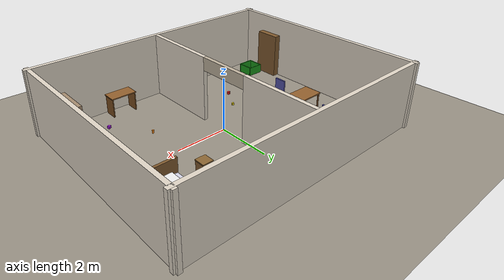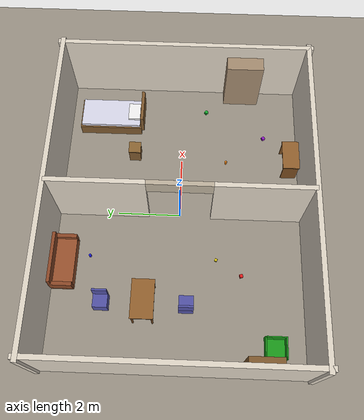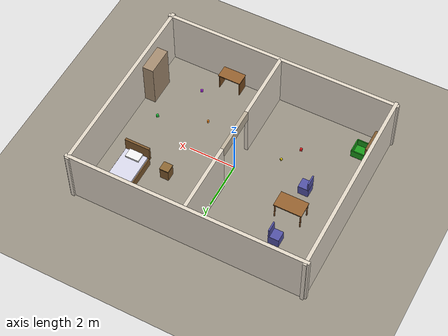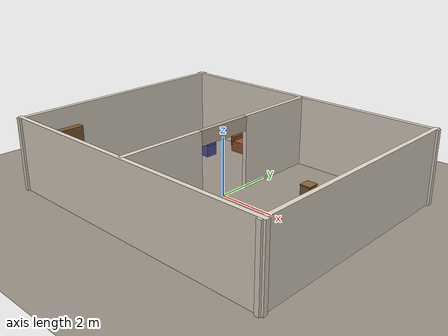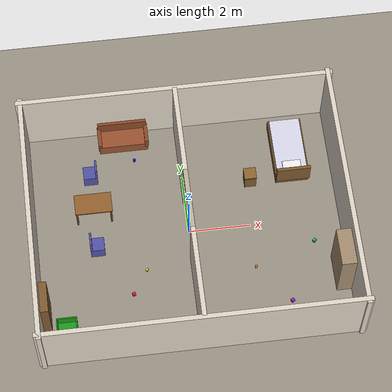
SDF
<?xml version="1.0" ?>
<sdf version="1.8">
    <world name="home">

    <!-- PHYSICS                                                       -->
    <gravity>0 0 -9.81</gravity>
    <physics name="default_physics" type="ode">
      <max_step_size>0.001</max_step_size>
      <real_time_factor>1.0</real_time_factor>
      <real_time_update_rate>1000</real_time_update_rate>
      <ode>
        <solver>
          <type>quick</type>
          <iters>50</iters>
          <sor>1.3</sor>
        </solver>
        <constraints>
          <cfm>0.0</cfm>
          <erp>0.2</erp>
          <contact_max_correcting_vel>100</contact_max_correcting_vel>
          <contact_surface_layer>0.001</contact_surface_layer>
        </constraints>
      </ode>
    </physics>

    <!-- SCENE / LIGHTING                                              -->
    <scene>
      <ambient>0.45 0.45 0.45 1</ambient>
      <background>0.7 0.7 0.75 1</background>
      <shadows>true</shadows>
      <grid>false</grid>
    </scene>

    <!-- Primary sun (directional) -->
    <light type="directional" name="sun">
      <cast_shadows>true</cast_shadows>
      <pose>0 0 10 0 0 0</pose>
      <diffuse>0.85 0.82 0.75 1</diffuse>
      <specular>0.25 0.25 0.22 1</specular>
      <direction>-0.4 0.1 -0.9</direction>
      <attenuation>
        <range>1000</range>
        <constant>0.9</constant>
        <linear>0.01</linear>
        <quadratic>0.001</quadratic>
      </attenuation>
    </light>

    <!-- Fill light from the opposite side — reduces harsh shadows -->
    <light type="directional" name="fill_light">
      <cast_shadows>false</cast_shadows>
      <pose>0 0 8 0 0 0</pose>
      <diffuse>0.3 0.3 0.35 1</diffuse>
      <specular>0.05 0.05 0.05 1</specular>
      <direction>0.5 -0.2 -0.8</direction>
    </light>
    <!-- GROUND PLANE                                                  -->
    <!-- Non-zero friction — mu=0.8 prevents wheel slip artefacts     -->
    <model name="ground_plane">
      <static>true</static>
      <link name="link">
        <collision name="collision">
          <geometry>
            <plane>
              <normal>0 0 1</normal>
              <size>100 100</size>
            </plane>
          </geometry>
          <surface>
            <friction>
              <ode>
                <mu>0.8</mu>
                <mu2>0.8</mu2>
                <fdir1>0 0 0</fdir1>
                <slip1>0.0</slip1>
                <slip2>0.0</slip2>
              </ode>
            </friction>
            <contact>
              <ode>
                <kp>1000000</kp>
                <kd>100</kd>
              </ode>
            </contact>
          </surface>
        </collision>
        <visual name="visual">
          <geometry>
            <plane>
              <normal>0 0 1</normal>
              <size>100 100</size>
            </plane>
          </geometry>
          <material>
            <ambient>0.55 0.52 0.48 1</ambient>
            <diffuse>0.60 0.57 0.52 1</diffuse>
            <specular>0.05 0.05 0.05 1</specular>
          </material>
        </visual>
      </link>
    </model>

    <!-- WALLS                                                         -->
    <!-- OUTER SOUTH (y = -4, full width 10 m) -->
    <model name="outer_wall_south">
      <static>true</static>
      <pose>0 -4 1.25 0 0 0</pose>
      <link name="link">
        <collision name="col">
          <geometry><box><size>10.3 0.15 2.5</size></box></geometry>
        </collision>
        <visual name="vis">
          <geometry><box><size>10.3 0.15 2.5</size></box></geometry>
          <material><ambient>0.88 0.84 0.78 1</ambient><diffuse>0.88 0.84 0.78 1</diffuse></material>
        </visual>
      </link>
    </model>

    <!-- OUTER NORTH (y = +4, full width 10 m) -->
    <model name="outer_wall_north">
      <static>true</static>
      <pose>0 4 1.25 0 0 0</pose>
      <link name="link">
        <collision name="col">
          <geometry><box><size>10.3 0.15 2.5</size></box></geometry>
        </collision>
        <visual name="vis">
          <geometry><box><size>10.3 0.15 2.5</size></box></geometry>
          <material><ambient>0.88 0.84 0.78 1</ambient><diffuse>0.88 0.84 0.78 1</diffuse></material>
        </visual>
      </link>
    </model>

    <!-- OUTER WEST (x = -5, room 1) -->
    <model name="outer_wall_west">
      <static>true</static>
      <pose>-5 0 1.25 0 0 0</pose>
      <link name="link">
        <collision name="col">
          <geometry><box><size>0.15 8.3 2.5</size></box></geometry>
        </collision>
        <visual name="vis">
          <geometry><box><size>0.15 8.3 2.5</size></box></geometry>
          <material><ambient>0.88 0.84 0.78 1</ambient><diffuse>0.88 0.84 0.78 1</diffuse></material>
        </visual>
      </link>
    </model>

    <!-- OUTER EAST (x = +5, room 2) -->
    <model name="outer_wall_east">
      <static>true</static>
      <pose>5 0 1.25 0 0 0</pose>
      <link name="link">
        <collision name="col">
          <geometry><box><size>0.15 8.3 2.5</size></box></geometry>
        </collision>
        <visual name="vis">
          <geometry><box><size>0.15 8.3 2.5</size></box></geometry>
          <material><ambient>0.88 0.84 0.78 1</ambient><diffuse>0.88 0.84 0.78 1</diffuse></material>
        </visual>
      </link>
    </model>

    <model name="div_wall_south">
      <static>true</static>
      <pose>0 -2.5 1.25 0 0 0</pose>
      <link name="link">
        <collision name="col">
          <geometry><box><size>0.15 3.0 2.5</size></box></geometry>
        </collision>
        <visual name="vis">
          <geometry><box><size>0.15 3.0 2.5</size></box></geometry>
          <material><ambient>0.88 0.84 0.78 1</ambient><diffuse>0.88 0.84 0.78 1</diffuse></material>
        </visual>
      </link>
    </model>

    <model name="div_wall_north">
      <static>true</static>
      <pose>0 2.5 1.25 0 0 0</pose>
      <link name="link">
        <collision name="col">
          <geometry><box><size>0.15 3.0 2.5</size></box></geometry>
        </collision>
        <visual name="vis">
          <geometry><box><size>0.15 3.0 2.5</size></box></geometry>
          <material><ambient>0.88 0.84 0.78 1</ambient><diffuse>0.88 0.84 0.78 1</diffuse></material>
        </visual>
      </link>
    </model>

    <!-- Door frame header (visual only — spans doorway top) -->
    <model name="door_frame_header">
      <static>true</static>
      <pose>0 0 2.25 0 0 0</pose>
      <link name="link">
        <collision name="col">
          <geometry><box><size>0.15 2.0 0.5</size></box></geometry>
        </collision>
        <visual name="vis">
          <geometry><box><size>0.15 2.0 0.5</size></box></geometry>
          <material><ambient>0.75 0.70 0.62 1</ambient><diffuse>0.75 0.70 0.62 1</diffuse></material>
        </visual>
      </link>
    </model>

    <!-- FURNITURE — ROOM 1 (living room, x<0)                        -->

    <!--
      TABLE — x=-3, y=1
      Top: 1.2 x 0.7 x 0.05 at z=0.75
      4 legs: radius 0.03, length 0.75, sitting on floor
    -->
    <model name="table">
      <static>true</static>
      <pose>-3 1 0 0 0 0</pose>
      <link name="link">
        <!-- Top -->
        <visual name="top_vis">
          <pose>0 0 0.775 0 0 0</pose>
          <geometry><box><size>1.2 0.7 0.05</size></box></geometry>
          <material><ambient>0.52 0.33 0.13 1</ambient><diffuse>0.58 0.38 0.18 1</diffuse></material>
        </visual>
        <collision name="top_col">
          <pose>0 0 0.775 0 0 0</pose>
          <geometry><box><size>1.2 0.7 0.05</size></box></geometry>
        </collision>
        <!-- Leg FL -->
        <visual name="leg_fl_vis"><pose>0.55 0.3 0.375 0 0 0</pose>
          <geometry><cylinder><radius>0.03</radius><length>0.75</length></cylinder></geometry>
          <material><ambient>0.40 0.24 0.10 1</ambient><diffuse>0.40 0.24 0.10 1</diffuse></material>
        </visual>
        <collision name="leg_fl_col"><pose>0.55 0.3 0.375 0 0 0</pose>
          <geometry><cylinder><radius>0.03</radius><length>0.75</length></cylinder></geometry>
        </collision>
        <!-- Leg FR -->
        <visual name="leg_fr_vis"><pose>0.55 -0.3 0.375 0 0 0</pose>
          <geometry><cylinder><radius>0.03</radius><length>0.75</length></cylinder></geometry>
          <material><ambient>0.40 0.24 0.10 1</ambient><diffuse>0.40 0.24 0.10 1</diffuse></material>
        </visual>
        <collision name="leg_fr_col"><pose>0.55 -0.3 0.375 0 0 0</pose>
          <geometry><cylinder><radius>0.03</radius><length>0.75</length></cylinder></geometry>
        </collision>
        <!-- Leg BL -->
        <visual name="leg_bl_vis"><pose>-0.55 0.3 0.375 0 0 0</pose>
          <geometry><cylinder><radius>0.03</radius><length>0.75</length></cylinder></geometry>
          <material><ambient>0.40 0.24 0.10 1</ambient><diffuse>0.40 0.24 0.10 1</diffuse></material>
        </visual>
        <collision name="leg_bl_col"><pose>-0.55 0.3 0.375 0 0 0</pose>
          <geometry><cylinder><radius>0.03</radius><length>0.75</length></cylinder></geometry>
        </collision>
        <!-- Leg BR -->
        <visual name="leg_br_vis"><pose>-0.55 -0.3 0.375 0 0 0</pose>
          <geometry><cylinder><radius>0.03</radius><length>0.75</length></cylinder></geometry>
          <material><ambient>0.40 0.24 0.10 1</ambient><diffuse>0.40 0.24 0.10 1</diffuse></material>
        </visual>
        <collision name="leg_br_col"><pose>-0.55 -0.3 0.375 0 0 0</pose>
          <geometry><cylinder><radius>0.03</radius><length>0.75</length></cylinder></geometry>
        </collision>
      </link>
    </model>

    <!--
      CHAIR 1 — north side of table, facing south
      Seat bottom at z=0 so legs sit on floor, seat top at z=0.45
    -->
    <model name="chair1">
      <static>true</static>
      <pose>-3 2.3 0 0 0 3.14159</pose>
      <link name="link">
        <!-- Seat -->
        <visual name="seat_vis"><pose>0 0 0.225 0 0 0</pose>
          <geometry><box><size>0.45 0.45 0.45</size></box></geometry>
          <material><ambient>0.28 0.28 0.58 1</ambient><diffuse>0.32 0.32 0.65 1</diffuse></material>
        </visual>
        <collision name="seat_col"><pose>0 0 0.225 0 0 0</pose>
          <geometry><box><size>0.45 0.45 0.45</size></box></geometry>
        </collision>
        <!-- Backrest -->
        <visual name="back_vis"><pose>-0.2 0 0.65 0 0 0</pose>
          <geometry><box><size>0.06 0.45 0.45</size></box></geometry>
          <material><ambient>0.28 0.28 0.58 1</ambient><diffuse>0.32 0.32 0.65 1</diffuse></material>
        </visual>
        <collision name="back_col"><pose>-0.2 0 0.65 0 0 0</pose>
          <geometry><box><size>0.06 0.45 0.45</size></box></geometry>
        </collision>
      </link>
    </model>

    <!--
      CHAIR 2 — south side of table, facing north
    -->
    <model name="chair2">
      <static>true</static>
      <pose>-3 -0.3 0 0 0 0</pose>
      <link name="link">
        <visual name="seat_vis"><pose>0 0 0.225 0 0 0</pose>
          <geometry><box><size>0.45 0.45 0.45</size></box></geometry>
          <material><ambient>0.28 0.28 0.58 1</ambient><diffuse>0.32 0.32 0.65 1</diffuse></material>
        </visual>
        <collision name="seat_col"><pose>0 0 0.225 0 0 0</pose>
          <geometry><box><size>0.45 0.45 0.45</size></box></geometry>
        </collision>
        <visual name="back_vis"><pose>-0.2 0 0.65 0 0 0</pose>
          <geometry><box><size>0.06 0.45 0.45</size></box></geometry>
          <material><ambient>0.28 0.28 0.58 1</ambient><diffuse>0.32 0.32 0.65 1</diffuse></material>
        </visual>
        <collision name="back_col"><pose>-0.2 0 0.65 0 0 0</pose>
          <geometry><box><size>0.06 0.45 0.45</size></box></geometry>
        </collision>
      </link>
    </model>

    <!--
      BOOKSHELF — against west wall of room 1
      Frame + 3 shelves — ALL shelves have collision geometry
    -->
    <model name="bookshelf">
      <static>true</static>
      <pose>-4.82 -2.5 0 0 0 0</pose>
      <link name="link">
        <!-- Outer frame (back + sides) -->
        <visual name="frame_vis"><pose>0 0 0.9 0 0 0</pose>
          <geometry><box><size>0.3 1.0 1.8</size></box></geometry>
          <material><ambient>0.44 0.30 0.14 1</ambient><diffuse>0.50 0.35 0.18 1</diffuse></material>
        </visual>
        <collision name="frame_col"><pose>0 0 0.9 0 0 0</pose>
          <geometry><box><size>0.3 1.0 1.8</size></box></geometry>
        </collision>
        <!-- Shelf panel 1 — z=0.45 -->
        <visual name="shelf1_vis"><pose>0 0 0.45 0 0 0</pose>
          <geometry><box><size>0.27 0.96 0.03</size></box></geometry>
          <material><ambient>0.56 0.40 0.20 1</ambient><diffuse>0.56 0.40 0.20 1</diffuse></material>
        </visual>
        <collision name="shelf1_col"><pose>0 0 0.45 0 0 0</pose>
          <geometry><box><size>0.27 0.96 0.03</size></box></geometry>
        </collision>
        <!-- Shelf panel 2 — z=0.90 -->
        <visual name="shelf2_vis"><pose>0 0 0.90 0 0 0</pose>
          <geometry><box><size>0.27 0.96 0.03</size></box></geometry>
          <material><ambient>0.56 0.40 0.20 1</ambient><diffuse>0.56 0.40 0.20 1</diffuse></material>
        </visual>
        <collision name="shelf2_col"><pose>0 0 0.90 0 0 0</pose>
          <geometry><box><size>0.27 0.96 0.03</size></box></geometry>
        </collision>
        <!-- Shelf panel 3 — z=1.35 -->
        <visual name="shelf3_vis"><pose>0 0 1.35 0 0 0</pose>
          <geometry><box><size>0.27 0.96 0.03</size></box></geometry>
          <material><ambient>0.56 0.40 0.20 1</ambient><diffuse>0.56 0.40 0.20 1</diffuse></material>
        </visual>
        <collision name="shelf3_col"><pose>0 0 1.35 0 0 0</pose>
          <geometry><box><size>0.27 0.96 0.03</size></box></geometry>
        </collision>
      </link>
    </model>

    <!--
      SOFA — room 1, against north wall, constrains robot path
    -->
    <model name="sofa">
      <static>true</static>
      <pose>-1.8 3.55 0 0 0 0</pose>
      <link name="link">
        <!-- Base cushion -->
        <visual name="base_vis"><pose>0 0 0.2 0 0 0</pose>
          <geometry><box><size>1.6 0.7 0.4</size></box></geometry>
          <material><ambient>0.55 0.28 0.15 1</ambient><diffuse>0.60 0.32 0.18 1</diffuse></material>
        </visual>
        <collision name="base_col"><pose>0 0 0.2 0 0 0</pose>
          <geometry><box><size>1.6 0.7 0.4</size></box></geometry>
        </collision>
        <!-- Backrest -->
        <visual name="back_vis"><pose>0 0.32 0.55 0 0 0</pose>
          <geometry><box><size>1.6 0.1 0.5</size></box></geometry>
          <material><ambient>0.50 0.24 0.12 1</ambient><diffuse>0.55 0.28 0.15 1</diffuse></material>
        </visual>
        <collision name="back_col"><pose>0 0.32 0.55 0 0 0</pose>
          <geometry><box><size>1.6 0.1 0.5</size></box></geometry>
        </collision>
        <!-- Left arm -->
        <visual name="arm_l_vis"><pose>-0.77 0 0.38 0 0 0</pose>
          <geometry><box><size>0.12 0.7 0.36</size></box></geometry>
          <material><ambient>0.50 0.24 0.12 1</ambient><diffuse>0.55 0.28 0.15 1</diffuse></material>
        </visual>
        <collision name="arm_l_col"><pose>-0.77 0 0.38 0 0 0</pose>
          <geometry><box><size>0.12 0.7 0.36</size></box></geometry>
        </collision>
        <!-- Right arm -->
        <visual name="arm_r_vis"><pose>0.77 0 0.38 0 0 0</pose>
          <geometry><box><size>0.12 0.7 0.36</size></box></geometry>
          <material><ambient>0.50 0.24 0.12 1</ambient><diffuse>0.55 0.28 0.15 1</diffuse></material>
        </visual>
        <collision name="arm_r_col"><pose>0.77 0 0.38 0 0 0</pose>
          <geometry><box><size>0.12 0.7 0.36</size></box></geometry>
        </collision>
      </link>
    </model>

    <!-- FURNITURE — ROOM 2 (bedroom, x>0)                           -->

    <!--
      BED — northeast corner of room 2
    -->
    <model name="bed">
      <static>true</static>
      <pose>3.6 2.5 0 0 0 0</pose>
      <link name="link">
        <!-- Bed frame -->
        <visual name="frame_vis"><pose>0 0 0.2 0 0 0</pose>
          <geometry><box><size>1.1 2.1 0.4</size></box></geometry>
          <material><ambient>0.44 0.30 0.14 1</ambient><diffuse>0.50 0.35 0.18 1</diffuse></material>
        </visual>
        <collision name="frame_col"><pose>0 0 0.2 0 0 0</pose>
          <geometry><box><size>1.1 2.1 0.4</size></box></geometry>
        </collision>
        <!-- Mattress -->
        <visual name="mattress_vis"><pose>0 0 0.45 0 0 0</pose>
          <geometry><box><size>1.0 2.0 0.12</size></box></geometry>
          <material><ambient>0.85 0.85 0.92 1</ambient><diffuse>0.85 0.85 0.92 1</diffuse></material>
        </visual>
        <collision name="mattress_col"><pose>0 0 0.45 0 0 0</pose>
          <geometry><box><size>1.0 2.0 0.12</size></box></geometry>
        </collision>
        <!-- Headboard -->
        <visual name="head_vis"><pose>0 -1.1 0.65 0 0 0</pose>
          <geometry><box><size>1.1 0.1 0.7</size></box></geometry>
          <material><ambient>0.44 0.30 0.14 1</ambient><diffuse>0.50 0.35 0.18 1</diffuse></material>
        </visual>
        <collision name="head_col"><pose>0 -1.1 0.65 0 0 0</pose>
          <geometry><box><size>1.1 0.1 0.7</size></box></geometry>
        </collision>
        <!-- Pillow -->
        <visual name="pillow_vis"><pose>0 -0.8 0.58 0 0 0</pose>
          <geometry><box><size>0.6 0.4 0.08</size></box></geometry>
          <material><ambient>0.95 0.95 0.95 1</ambient><diffuse>0.95 0.95 0.95 1</diffuse></material>
        </visual>
      </link>
    </model>

    <!--
      BEDSIDE TABLE — beside bed, constrains path
    -->
    <model name="bedside_table">
      <static>true</static>
      <pose>2.2 1.6 0 0 0 0</pose>
      <link name="link">
        <visual name="body_vis"><pose>0 0 0.28 0 0 0</pose>
          <geometry><box><size>0.38 0.38 0.56</size></box></geometry>
          <material><ambient>0.50 0.35 0.18 1</ambient><diffuse>0.50 0.35 0.18 1</diffuse></material>
        </visual>
        <collision name="body_col"><pose>0 0 0.28 0 0 0</pose>
          <geometry><box><size>0.38 0.38 0.56</size></box></geometry>
        </collision>
        <visual name="top_vis"><pose>0 0 0.57 0 0 0</pose>
          <geometry><box><size>0.40 0.40 0.04</size></box></geometry>
          <material><ambient>0.55 0.40 0.20 1</ambient><diffuse>0.55 0.40 0.20 1</diffuse></material>
        </visual>
        <collision name="top_col"><pose>0 0 0.57 0 0 0</pose>
          <geometry><box><size>0.40 0.40 0.04</size></box></geometry>
        </collision>
      </link>
    </model>

    <!--
      WARDROBE — against east wall of room 2
      Solid body + collision on door panel too
    -->
    <model name="wardrobe">
      <static>true</static>
      <pose>4.72 -2.0 0 0 0 0</pose>
      <link name="link">
        <!-- Main body -->
        <visual name="body_vis"><pose>0 0 1.0 0 0 0</pose>
          <geometry><box><size>0.55 1.2 2.0</size></box></geometry>
          <material><ambient>0.60 0.50 0.40 1</ambient><diffuse>0.65 0.55 0.44 1</diffuse></material>
        </visual>
        <collision name="body_col"><pose>0 0 1.0 0 0 0</pose>
          <geometry><box><size>0.55 1.2 2.0</size></box></geometry>
        </collision>
        <!-- Door panel (visual + collision) -->
        <visual name="door_vis"><pose>0.285 0 1.0 0 0 0</pose>
          <geometry><box><size>0.03 1.15 1.95</size></box></geometry>
          <material><ambient>0.72 0.62 0.50 1</ambient><diffuse>0.72 0.62 0.50 1</diffuse></material>
        </visual>
        <collision name="door_col"><pose>0.285 0 1.0 0 0 0</pose>
          <geometry><box><size>0.03 1.15 1.95</size></box></geometry>
        </collision>
        <!-- Door handle -->
        <visual name="handle_vis"><pose>0.32 -0.4 1.0 0 0 0</pose>
          <geometry><sphere><radius>0.025</radius></sphere></geometry>
          <material><ambient>0.7 0.7 0.7 1</ambient><diffuse>0.8 0.8 0.8 1</diffuse></material>
        </visual>
      </link>
    </model>

    <!--
      SMALL DESK — room 2, against south wall — adds nav constraint
    -->
    <model name="desk">
      <static>true</static>
      <pose>2.0 -3.6 0 0 0 0</pose>
      <link name="link">
        <!-- Top -->
        <visual name="top_vis"><pose>0 0 0.75 0 0 0</pose>
          <geometry><box><size>1.0 0.55 0.04</size></box></geometry>
          <material><ambient>0.52 0.33 0.13 1</ambient><diffuse>0.58 0.38 0.18 1</diffuse></material>
        </visual>
        <collision name="top_col"><pose>0 0 0.75 0 0 0</pose>
          <geometry><box><size>1.0 0.55 0.04</size></box></geometry>
        </collision>
        <!-- Left panel leg -->
        <visual name="leg_l_vis"><pose>-0.46 0 0.375 0 0 0</pose>
          <geometry><box><size>0.04 0.50 0.75</size></box></geometry>
          <material><ambient>0.48 0.30 0.12 1</ambient><diffuse>0.48 0.30 0.12 1</diffuse></material>
        </visual>
        <collision name="leg_l_col"><pose>-0.46 0 0.375 0 0 0</pose>
          <geometry><box><size>0.04 0.50 0.75</size></box></geometry>
        </collision>
        <!-- Right panel leg -->
        <visual name="leg_r_vis"><pose>0.46 0 0.375 0 0 0</pose>
          <geometry><box><size>0.04 0.50 0.75</size></box></geometry>
          <material><ambient>0.48 0.30 0.12 1</ambient><diffuse>0.48 0.30 0.12 1</diffuse></material>
        </visual>
        <collision name="leg_r_col"><pose>0.46 0 0.375 0 0 0</pose>
          <geometry><box><size>0.04 0.50 0.75</size></box></geometry>
        </collision>
      </link>
    </model>

    <!-- COLLECTION BOX                                               -->
    <!-- Near robot start in room 1 SW corner — open top, 4 walls    -->
    <!-- Bottom at z=0, walls are 0.35 m tall                         -->
    <!-- Robot spawn at approx x=-4.0, y=0.0 — box at x=-4.2, y=-3  -->
    <model name="collection_box">
      <static>true</static>
      <pose>-4.2 -3.0 0 0 0 0</pose>
      <link name="link">
        <!-- Bottom -->
        <visual name="bot_vis"><pose>0 0 0.02 0 0 0</pose>
          <geometry><box><size>0.65 0.65 0.04</size></box></geometry>
          <material><ambient>0.08 0.52 0.08 1</ambient><diffuse>0.10 0.60 0.10 1</diffuse></material>
        </visual>
        <collision name="bot_col"><pose>0 0 0.02 0 0 0</pose>
          <geometry><box><size>0.65 0.65 0.04</size></box></geometry>
        </collision>
        <!-- Wall North -->
        <visual name="wn_vis"><pose>0 0.31 0.19 0 0 0</pose>
          <geometry><box><size>0.65 0.04 0.35</size></box></geometry>
          <material><ambient>0.08 0.52 0.08 1</ambient><diffuse>0.10 0.60 0.10 1</diffuse></material>
        </visual>
        <collision name="wn_col"><pose>0 0.31 0.19 0 0 0</pose>
          <geometry><box><size>0.65 0.04 0.35</size></box></geometry>
        </collision>
        <!-- Wall South -->
        <visual name="ws_vis"><pose>0 -0.31 0.19 0 0 0</pose>
          <geometry><box><size>0.65 0.04 0.35</size></box></geometry>
          <material><ambient>0.08 0.52 0.08 1</ambient><diffuse>0.10 0.60 0.10 1</diffuse></material>
        </visual>
        <collision name="ws_col"><pose>0 -0.31 0.19 0 0 0</pose>
          <geometry><box><size>0.65 0.04 0.35</size></box></geometry>
        </collision>
        <!-- Wall East -->
        <visual name="we_vis"><pose>0.31 0 0.19 0 0 0</pose>
          <geometry><box><size>0.04 0.57 0.35</size></box></geometry>
          <material><ambient>0.08 0.52 0.08 1</ambient><diffuse>0.10 0.60 0.10 1</diffuse></material>
        </visual>
        <collision name="we_col"><pose>0.31 0 0.19 0 0 0</pose>
          <geometry><box><size>0.04 0.57 0.35</size></box></geometry>
        </collision>
        <!-- Wall West -->
        <visual name="ww_vis"><pose>-0.31 0 0.19 0 0 0</pose>
          <geometry><box><size>0.04 0.57 0.35</size></box></geometry>
          <material><ambient>0.08 0.52 0.08 1</ambient><diffuse>0.10 0.60 0.10 1</diffuse></material>
        </visual>
        <collision name="ww_col"><pose>-0.31 0 0.19 0 0 0</pose>
          <geometry><box><size>0.04 0.57 0.35</size></box></geometry>
        </collision>
      </link>
    </model>

    <!-- PICKUP OBJECTS                                               -->
    <!-- All: static=false, physically complete (mass + inertia +    -->
    <!-- collision + friction + visual), on the floor (z=half height)-->
    <!-- None placed inside the doorway (y=[-1,1] at x=0)           -->
    <!-- Inertia for solid box: I = 1/12 * m * (a^2 + b^2)          -->
    <!-- Inertia for solid cylinder: Ixx=Iyy=1/12*m*(3r^2+h^2),     -->
    <!--                             Izz=1/2*m*r^2                   -->

    <!-- Object 1: red block, room 1 near centre -->
    <model name="pickup_block_red">
      <static>false</static>
      <pose>-2.0 -2.0 0.05 0 0 0.3</pose>
      <link name="link">
        <inertial>
          <mass>0.10</mass>
          <!-- 1/12*0.1*(0.1^2+0.1^2) = 0.000167 each, Izz same -->
          <inertia><ixx>0.000167</ixx><iyy>0.000167</iyy><izz>0.000167</izz>
                   <ixy>0</ixy><ixz>0</ixz><iyz>0</iyz></inertia>
        </inertial>
        <collision name="col">
          <geometry><box><size>0.10 0.10 0.10</size></box></geometry>
          <surface><friction><ode><mu>0.6</mu><mu2>0.6</mu2></ode></friction>
            <contact><ode><kp>100000</kp><kd>10</kd></ode></contact>
          </surface>
        </collision>
        <visual name="vis">
          <geometry><box><size>0.10 0.10 0.10</size></box></geometry>
          <material><ambient>0.80 0.10 0.10 1</ambient><diffuse>0.90 0.10 0.10 1</diffuse></material>
        </visual>
      </link>
      <plugin filename="gz-sim-detachable-joint-system"
              name="gz::sim::systems::DetachableJoint">
        <parent_link>link</parent_link>
        <child_model>tidying_robot</child_model>
        <child_link>right_gripper_palm</child_link>
        <topic>/pickup_block_red/attach</topic>
        <detach_topic>/pickup_block_red/detach</detach_topic>
        <suppress_child_warning>true</suppress_child_warning>
      </plugin>
    </model>

    <!-- Object 2: blue cylinder, room 1 near sofa -->
    <model name="pickup_cylinder_blue">
      <static>false</static>
      <pose>-1.5 2.8 0.06 0 0 0</pose>
      <link name="link">
        <inertial>
          <mass>0.15</mass>
          <!-- r=0.04 h=0.12: Ixx=Iyy=1/12*0.15*(3*0.0016+0.0144)=0.000225 Izz=0.5*0.15*0.0016=0.00012 -->
          <inertia><ixx>0.000240</ixx><iyy>0.000240</iyy><izz>0.000120</izz>
                   <ixy>0</ixy><ixz>0</ixz><iyz>0</iyz></inertia>
        </inertial>
        <collision name="col">
          <geometry><cylinder><radius>0.04</radius><length>0.12</length></cylinder></geometry>
          <surface><friction><ode><mu>0.6</mu><mu2>0.6</mu2></ode></friction>
            <contact><ode><kp>100000</kp><kd>10</kd></ode></contact>
          </surface>
        </collision>
        <visual name="vis">
          <geometry><cylinder><radius>0.04</radius><length>0.12</length></cylinder></geometry>
          <material><ambient>0.10 0.10 0.85 1</ambient><diffuse>0.10 0.10 0.90 1</diffuse></material>
        </visual>
      </link>
      <plugin filename="gz-sim-detachable-joint-system"
              name="gz::sim::systems::DetachableJoint">
        <parent_link>link</parent_link>
        <child_model>tidying_robot</child_model>
        <child_link>right_gripper_palm</child_link>
        <topic>/pickup_cylinder_blue/attach</topic>
        <detach_topic>/pickup_cylinder_blue/detach</detach_topic>
        <suppress_child_warning>true</suppress_child_warning>
      </plugin>
    </model>

    <!-- Object 3: yellow block, room 1 — away from doorway -->
    <model name="pickup_block_yellow">
      <static>false</static>
      <pose>-1.5 -1.2 0.04 0 0 1.1</pose>
      <link name="link">
        <inertial>
          <mass>0.08</mass>
          <!-- 0.08x0.08x0.08 box: 1/12*0.08*(0.0064+0.0064)=0.0000853 -->
          <inertia><ixx>0.0000853</ixx><iyy>0.0000853</iyy><izz>0.0000853</izz>
                   <ixy>0</ixy><ixz>0</ixz><iyz>0</iyz></inertia>
        </inertial>
        <collision name="col">
          <geometry><box><size>0.08 0.08 0.08</size></box></geometry>
          <surface><friction><ode><mu>0.6</mu><mu2>0.6</mu2></ode></friction>
            <contact><ode><kp>100000</kp><kd>10</kd></ode></contact>
          </surface>
        </collision>
        <visual name="vis">
          <geometry><box><size>0.08 0.08 0.08</size></box></geometry>
          <material><ambient>0.92 0.82 0.08 1</ambient><diffuse>0.92 0.82 0.08 1</diffuse></material>
        </visual>
      </link>
      <plugin filename="gz-sim-detachable-joint-system"
              name="gz::sim::systems::DetachableJoint">
        <parent_link>link</parent_link>
        <child_model>tidying_robot</child_model>
        <child_link>right_gripper_palm</child_link>
        <topic>/pickup_block_yellow/attach</topic>
        <detach_topic>/pickup_block_yellow/detach</detach_topic>
        <suppress_child_warning>true</suppress_child_warning>
      </plugin>
    </model>

    <!-- Object 4: orange cylinder, room 2 open area -->
    <model name="pickup_cylinder_orange">
      <static>false</static>
      <pose>2.0 -1.5 0.06 0 0 0</pose>
      <link name="link">
        <inertial>
          <mass>0.12</mass>
          <!-- r=0.04 h=0.12: Ixx=Iyy=1/12*0.12*(0.0048+0.0144)=0.000192 Izz=0.5*0.12*0.0016=0.000096 -->
          <inertia><ixx>0.000192</ixx><iyy>0.000192</iyy><izz>0.000096</izz>
                   <ixy>0</ixy><ixz>0</ixz><iyz>0</iyz></inertia>
        </inertial>
        <collision name="col">
          <geometry><cylinder><radius>0.04</radius><length>0.12</length></cylinder></geometry>
          <surface><friction><ode><mu>0.6</mu><mu2>0.6</mu2></ode></friction>
            <contact><ode><kp>100000</kp><kd>10</kd></ode></contact>
          </surface>
        </collision>
        <visual name="vis">
          <geometry><cylinder><radius>0.04</radius><length>0.12</length></cylinder></geometry>
          <material><ambient>0.92 0.50 0.08 1</ambient><diffuse>0.92 0.50 0.08 1</diffuse></material>
        </visual>
      </link>
      <plugin filename="gz-sim-detachable-joint-system"
              name="gz::sim::systems::DetachableJoint">
        <parent_link>link</parent_link>
        <child_model>tidying_robot</child_model>
        <child_link>right_gripper_palm</child_link>
        <topic>/pickup_cylinder_orange/attach</topic>
        <detach_topic>/pickup_cylinder_orange/detach</detach_topic>
        <suppress_child_warning>true</suppress_child_warning>
      </plugin>
    </model>

    <!-- Object 5: purple block, room 2 near desk -->
    <model name="pickup_block_purple">
      <static>false</static>
      <pose>3.0 -2.8 0.05 0 0 0.5</pose>
      <link name="link">
        <inertial>
          <mass>0.10</mass>
          <inertia><ixx>0.000167</ixx><iyy>0.000167</iyy><izz>0.000167</izz>
                   <ixy>0</ixy><ixz>0</ixz><iyz>0</iyz></inertia>
        </inertial>
        <collision name="col">
          <geometry><box><size>0.10 0.10 0.10</size></box></geometry>
          <surface><friction><ode><mu>0.6</mu><mu2>0.6</mu2></ode></friction>
            <contact><ode><kp>100000</kp><kd>10</kd></ode></contact>
          </surface>
        </collision>
        <visual name="vis">
          <geometry><box><size>0.10 0.10 0.10</size></box></geometry>
          <material><ambient>0.60 0.10 0.82 1</ambient><diffuse>0.60 0.10 0.82 1</diffuse></material>
        </visual>
      </link>
      <plugin filename="gz-sim-detachable-joint-system"
              name="gz::sim::systems::DetachableJoint">
        <parent_link>link</parent_link>
        <child_model>tidying_robot</child_model>
        <child_link>right_gripper_palm</child_link>
        <topic>/pickup_block_purple/attach</topic>
        <detach_topic>/pickup_block_purple/detach</detach_topic>
        <suppress_child_warning>true</suppress_child_warning>
      </plugin>
    </model>

    <!-- Object 6: green block, room 2 near wardrobe (bonus 6th object) -->
    <model name="pickup_block_green">
      <static>false</static>
      <pose>4.0 -0.8 0.05 0 0 0.8</pose>
      <link name="link">
        <inertial>
          <mass>0.10</mass>
          <inertia><ixx>0.000167</ixx><iyy>0.000167</iyy><izz>0.000167</izz>
                   <ixy>0</ixy><ixz>0</ixz><iyz>0</iyz></inertia>
        </inertial>
        <collision name="col">
          <geometry><box><size>0.10 0.10 0.10</size></box></geometry>
          <surface><friction><ode><mu>0.6</mu><mu2>0.6</mu2></ode></friction>
            <contact><ode><kp>100000</kp><kd>10</kd></ode></contact>
          </surface>
        </collision>
        <visual name="vis">
          <geometry><box><size>0.10 0.10 0.10</size></box></geometry>
          <material><ambient>0.10 0.72 0.20 1</ambient><diffuse>0.10 0.72 0.20 1</diffuse></material>
        </visual>
      </link>
      <plugin filename="gz-sim-detachable-joint-system"
              name="gz::sim::systems::DetachableJoint">
        <parent_link>link</parent_link>
        <child_model>tidying_robot</child_model>
        <child_link>right_gripper_palm</child_link>
        <topic>/pickup_block_green/attach</topic>
        <detach_topic>/pickup_block_green/detach</detach_topic>
        <suppress_child_warning>true</suppress_child_warning>
      </plugin>
    </model>

    </world>
</sdf>
